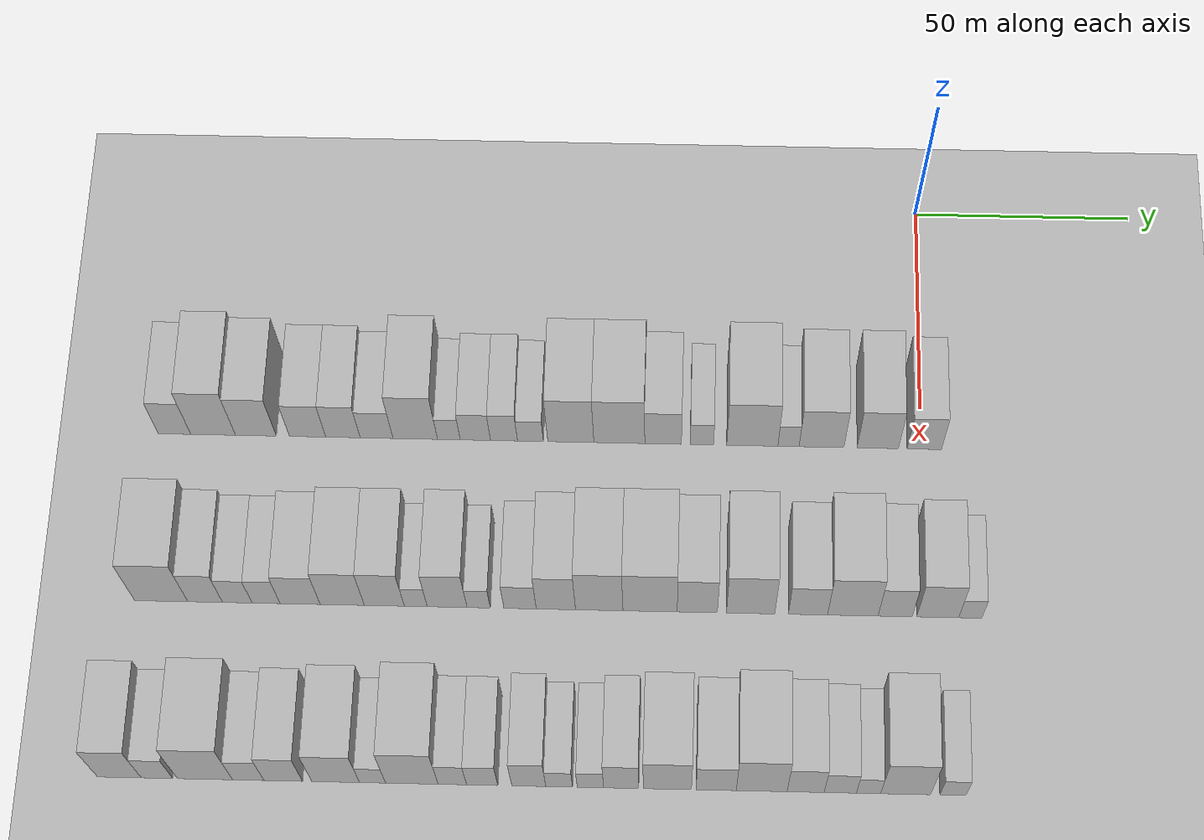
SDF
<sdf version="1.6">
 <world name="default">
  <include><name>ground_plane_1</name><uri>model://HANNAS_ground_plane</uri></include>
  <include>
   <name>ground_plane_2</name>
   <uri>model://HANNAS_ground_plane</uri>
   <pose>100 0 0  0 0 0</pose>
  </include>
  <model name="building_21">
   <static>1</static>
   <pose>50.0000 -169.9237 0 0.000000 0.000000 0.000000</pose>
   <link name="link">
    <pose>0 0 9.00 0 0 0</pose>
    <collision name="collision"><geometry><box><size>20.0000 7.3776 18.0000</size></box></geometry></collision>
    <visual name="visual">
     <cast_shadows>0</cast_shadows>
     <geometry><box><size>20.0000 7.3776 18.0000</size></box></geometry>
     <material>
      <script>
       <uri>model://HANNAS_wall/materials/scripts</uri>
       <uri>model://HANNAS_wall/materials/textures</uri>
       <name>vrc/HANNAS_wall</name>
      </script>
     </material>
    </visual>
   </link>
  </model>
  <model name="building_22">
   <static>1</static>
   <pose>50.0000 -161.1338 0 0.000000 0.000000 0.000000</pose>
   <link name="link">
    <pose>0 0 12.00 0 0 0</pose>
    <collision name="collision"><geometry><box><size>20.0000 10.2021 24.0000</size></box></geometry></collision>
    <visual name="visual">
     <cast_shadows>0</cast_shadows>
     <geometry><box><size>20.0000 10.2021 24.0000</size></box></geometry>
     <material>
      <script>
       <uri>model://HANNAS_wall/materials/scripts</uri>
       <uri>model://HANNAS_wall/materials/textures</uri>
       <name>vrc/HANNAS_wall</name>
      </script>
     </material>
    </visual>
   </link>
  </model>
  <model name="building_23">
   <static>1</static>
   <pose>50.0000 -151.3745 0 0.000000 0.000000 0.000000</pose>
   <link name="link">
    <pose>0 0 10.50 0 0 0</pose>
    <collision name="collision"><geometry><box><size>20.0000 9.3167 21.0000</size></box></geometry></collision>
    <visual name="visual">
     <cast_shadows>0</cast_shadows>
     <geometry><box><size>20.0000 9.3167 21.0000</size></box></geometry>
     <material>
      <script>
       <uri>model://HANNAS_wall/materials/scripts</uri>
       <uri>model://HANNAS_wall/materials/textures</uri>
       <name>vrc/HANNAS_wall</name>
      </script>
     </material>
    </visual>
   </link>
  </model>
  <model name="building_24">
   <static>1</static>
   <pose>50.0000 -139.5765 0 0.000000 0.000000 0.000000</pose>
   <link name="link">
    <pose>0 0 9.00 0 0 0</pose>
    <collision name="collision"><geometry><box><size>20.0000 8.2792 18.0000</size></box></geometry></collision>
    <visual name="visual">
     <cast_shadows>0</cast_shadows>
     <geometry><box><size>20.0000 8.2792 18.0000</size></box></geometry>
     <material>
      <script>
       <uri>model://HANNAS_wall/materials/scripts</uri>
       <uri>model://HANNAS_wall/materials/textures</uri>
       <name>vrc/HANNAS_wall</name>
      </script>
     </material>
    </visual>
   </link>
  </model>
  <model name="building_25">
   <static>1</static>
   <pose>50.0000 -131.5119 0 0.000000 0.000000 0.000000</pose>
   <link name="link">
    <pose>0 0 9.00 0 0 0</pose>
    <collision name="collision"><geometry><box><size>20.0000 7.8499 18.0000</size></box></geometry></collision>
    <visual name="visual">
     <cast_shadows>0</cast_shadows>
     <geometry><box><size>20.0000 7.8499 18.0000</size></box></geometry>
     <material>
      <script>
       <uri>model://HANNAS_wall/materials/scripts</uri>
       <uri>model://HANNAS_wall/materials/textures</uri>
       <name>vrc/HANNAS_wall</name>
      </script>
     </material>
    </visual>
   </link>
  </model>
  <model name="building_26">
   <static>1</static>
   <pose>50.0000 -123.8515 0 0.000000 0.000000 0.000000</pose>
   <link name="link">
    <pose>0 0 7.50 0 0 0</pose>
    <collision name="collision"><geometry><box><size>20.0000 7.4709 15.0000</size></box></geometry></collision>
    <visual name="visual">
     <cast_shadows>0</cast_shadows>
     <geometry><box><size>20.0000 7.4709 15.0000</size></box></geometry>
     <material>
      <script>
       <uri>model://HANNAS_wall/materials/scripts</uri>
       <uri>model://HANNAS_wall/materials/textures</uri>
       <name>vrc/HANNAS_wall</name>
      </script>
     </material>
    </visual>
   </link>
  </model>
  <model name="building_27">
   <static>1</static>
   <pose>50.0000 -115.0399 0 0.000000 0.000000 0.000000</pose>
   <link name="link">
    <pose>0 0 12.00 0 0 0</pose>
    <collision name="collision"><geometry><box><size>20.0000 10.1523 24.0000</size></box></geometry></collision>
    <visual name="visual">
     <cast_shadows>0</cast_shadows>
     <geometry><box><size>20.0000 10.1523 24.0000</size></box></geometry>
     <material>
      <script>
       <uri>model://HANNAS_wall/materials/scripts</uri>
       <uri>model://HANNAS_wall/materials/textures</uri>
       <name>vrc/HANNAS_wall</name>
      </script>
     </material>
    </visual>
   </link>
  </model>
  <model name="building_28">
   <static>1</static>
   <pose>50.0000 -107.3842 0 0.000000 0.000000 0.000000</pose>
   <link name="link">
    <pose>0 0 6.00 0 0 0</pose>
    <collision name="collision"><geometry><box><size>20.0000 5.1590 12.0000</size></box></geometry></collision>
    <visual name="visual">
     <cast_shadows>0</cast_shadows>
     <geometry><box><size>20.0000 5.1590 12.0000</size></box></geometry>
     <material>
      <script>
       <uri>model://HANNAS_wall/materials/scripts</uri>
       <uri>model://HANNAS_wall/materials/textures</uri>
       <name>vrc/HANNAS_wall</name>
      </script>
     </material>
    </visual>
   </link>
  </model>
  <model name="building_29">
   <static>1</static>
   <pose>50.0000 -101.3561 0 0.000000 0.000000 0.000000</pose>
   <link name="link">
    <pose>0 0 7.50 0 0 0</pose>
    <collision name="collision"><geometry><box><size>20.0000 6.8971 15.0000</size></box></geometry></collision>
    <visual name="visual">
     <cast_shadows>0</cast_shadows>
     <geometry><box><size>20.0000 6.8971 15.0000</size></box></geometry>
     <material>
      <script>
       <uri>model://HANNAS_wall/materials/scripts</uri>
       <uri>model://HANNAS_wall/materials/textures</uri>
       <name>vrc/HANNAS_wall</name>
      </script>
     </material>
    </visual>
   </link>
  </model>
  <model name="building_30">
   <static>1</static>
   <pose>50.0000 -94.8345 0 0.000000 0.000000 0.000000</pose>
   <link name="link">
    <pose>0 0 7.50 0 0 0</pose>
    <collision name="collision"><geometry><box><size>20.0000 6.1461 15.0000</size></box></geometry></collision>
    <visual name="visual">
     <cast_shadows>0</cast_shadows>
     <geometry><box><size>20.0000 6.1461 15.0000</size></box></geometry>
     <material>
      <script>
       <uri>model://HANNAS_wall/materials/scripts</uri>
       <uri>model://HANNAS_wall/materials/textures</uri>
       <name>vrc/HANNAS_wall</name>
      </script>
     </material>
    </visual>
   </link>
  </model>
  <model name="building_31">
   <static>1</static>
   <pose>50.0000 -88.8080 0 0.000000 0.000000 0.000000</pose>
   <link name="link">
    <pose>0 0 6.00 0 0 0</pose>
    <collision name="collision"><geometry><box><size>20.0000 5.9069 12.0000</size></box></geometry></collision>
    <visual name="visual">
     <cast_shadows>0</cast_shadows>
     <geometry><box><size>20.0000 5.9069 12.0000</size></box></geometry>
     <material>
      <script>
       <uri>model://HANNAS_wall/materials/scripts</uri>
       <uri>model://HANNAS_wall/materials/textures</uri>
       <name>vrc/HANNAS_wall</name>
      </script>
     </material>
    </visual>
   </link>
  </model>
  <model name="building_32">
   <static>1</static>
   <pose>50.0000 -79.6111 0 0.000000 0.000000 0.000000</pose>
   <link name="link">
    <pose>0 0 12.00 0 0 0</pose>
    <collision name="collision"><geometry><box><size>20.0000 10.4868 24.0000</size></box></geometry></collision>
    <visual name="visual">
     <cast_shadows>0</cast_shadows>
     <geometry><box><size>20.0000 10.4868 24.0000</size></box></geometry>
     <material>
      <script>
       <uri>model://HANNAS_wall/materials/scripts</uri>
       <uri>model://HANNAS_wall/materials/textures</uri>
       <name>vrc/HANNAS_wall</name>
      </script>
     </material>
    </visual>
   </link>
  </model>
  <model name="building_33">
   <static>1</static>
   <pose>50.0000 -68.5768 0 0.000000 0.000000 0.000000</pose>
   <link name="link">
    <pose>0 0 12.00 0 0 0</pose>
    <collision name="collision"><geometry><box><size>20.0000 11.5819 24.0000</size></box></geometry></collision>
    <visual name="visual">
     <cast_shadows>0</cast_shadows>
     <geometry><box><size>20.0000 11.5819 24.0000</size></box></geometry>
     <material>
      <script>
       <uri>model://HANNAS_wall/materials/scripts</uri>
       <uri>model://HANNAS_wall/materials/textures</uri>
       <name>vrc/HANNAS_wall</name>
      </script>
     </material>
    </visual>
   </link>
  </model>
  <model name="building_34">
   <static>1</static>
   <pose>50.0000 -58.6236 0 0.000000 0.000000 0.000000</pose>
   <link name="link">
    <pose>0 0 9.00 0 0 0</pose>
    <collision name="collision"><geometry><box><size>20.0000 8.3245 18.0000</size></box></geometry></collision>
    <visual name="visual">
     <cast_shadows>0</cast_shadows>
     <geometry><box><size>20.0000 8.3245 18.0000</size></box></geometry>
     <material>
      <script>
       <uri>model://HANNAS_wall/materials/scripts</uri>
       <uri>model://HANNAS_wall/materials/textures</uri>
       <name>vrc/HANNAS_wall</name>
      </script>
     </material>
    </visual>
   </link>
  </model>
  <model name="building_35">
   <static>1</static>
   <pose>50.0000 -49.8125 0 0.000000 0.000000 0.000000</pose>
   <link name="link">
    <pose>0 0 6.00 0 0 0</pose>
    <collision name="collision"><geometry><box><size>20.0000 5.2978 12.0000</size></box></geometry></collision>
    <visual name="visual">
     <cast_shadows>0</cast_shadows>
     <geometry><box><size>20.0000 5.2978 12.0000</size></box></geometry>
     <material>
      <script>
       <uri>model://HANNAS_wall/materials/scripts</uri>
       <uri>model://HANNAS_wall/materials/textures</uri>
       <name>vrc/HANNAS_wall</name>
      </script>
     </material>
    </visual>
   </link>
  </model>
  <model name="building_36">
   <static>1</static>
   <pose>50.0000 -38.3444 0 0.000000 0.000000 0.000000</pose>
   <link name="link">
    <pose>0 0 12.00 0 0 0</pose>
    <collision name="collision"><geometry><box><size>20.0000 11.6383 24.0000</size></box></geometry></collision>
    <visual name="visual">
     <cast_shadows>0</cast_shadows>
     <geometry><box><size>20.0000 11.6383 24.0000</size></box></geometry>
     <material>
      <script>
       <uri>model://HANNAS_wall/materials/scripts</uri>
       <uri>model://HANNAS_wall/materials/textures</uri>
       <name>vrc/HANNAS_wall</name>
      </script>
     </material>
    </visual>
   </link>
  </model>
  <model name="building_37">
   <static>1</static>
   <pose>50.0000 -30.1147 0 0.000000 0.000000 0.000000</pose>
   <link name="link">
    <pose>0 0 6.00 0 0 0</pose>
    <collision name="collision"><geometry><box><size>20.0000 4.8212 12.0000</size></box></geometry></collision>
    <visual name="visual">
     <cast_shadows>0</cast_shadows>
     <geometry><box><size>20.0000 4.8212 12.0000</size></box></geometry>
     <material>
      <script>
       <uri>model://HANNAS_wall/materials/scripts</uri>
       <uri>model://HANNAS_wall/materials/textures</uri>
       <name>vrc/HANNAS_wall</name>
      </script>
     </material>
    </visual>
   </link>
  </model>
  <model name="building_38">
   <static>1</static>
   <pose>50.0000 -22.6148 0 0.000000 0.000000 0.000000</pose>
   <link name="link">
    <pose>0 0 10.50 0 0 0</pose>
    <collision name="collision"><geometry><box><size>20.0000 10.1786 21.0000</size></box></geometry></collision>
    <visual name="visual">
     <cast_shadows>0</cast_shadows>
     <geometry><box><size>20.0000 10.1786 21.0000</size></box></geometry>
     <material>
      <script>
       <uri>model://HANNAS_wall/materials/scripts</uri>
       <uri>model://HANNAS_wall/materials/textures</uri>
       <name>vrc/HANNAS_wall</name>
      </script>
     </material>
    </visual>
   </link>
  </model>
  <model name="building_39">
   <static>1</static>
   <pose>50.0000 -9.8363 0 0.000000 0.000000 0.000000</pose>
   <link name="link">
    <pose>0 0 10.50 0 0 0</pose>
    <collision name="collision"><geometry><box><size>20.0000 9.3783 21.0000</size></box></geometry></collision>
    <visual name="visual">
     <cast_shadows>0</cast_shadows>
     <geometry><box><size>20.0000 9.3783 21.0000</size></box></geometry>
     <material>
      <script>
       <uri>model://HANNAS_wall/materials/scripts</uri>
       <uri>model://HANNAS_wall/materials/textures</uri>
       <name>vrc/HANNAS_wall</name>
      </script>
     </material>
    </visual>
   </link>
  </model>
  <model name="building_40">
   <static>1</static>
   <pose>50.0000 0.7481 0 0.000000 0.000000 0.000000</pose>
   <link name="link">
    <pose>0 0 9.00 0 0 0</pose>
    <collision name="collision"><geometry><box><size>20.0000 7.7905 18.0000</size></box></geometry></collision>
    <visual name="visual">
     <cast_shadows>0</cast_shadows>
     <geometry><box><size>20.0000 7.7905 18.0000</size></box></geometry>
     <material>
      <script>
       <uri>model://HANNAS_wall/materials/scripts</uri>
       <uri>model://HANNAS_wall/materials/textures</uri>
       <name>vrc/HANNAS_wall</name>
      </script>
     </material>
    </visual>
   </link>
  </model>
  <model name="building_111">
   <static>1</static>
   <pose>90.0000 -168.9649 0 0.000000 0.000000 0.000000</pose>
   <link name="link">
    <pose>0 0 12.00 0 0 0</pose>
    <collision name="collision"><geometry><box><size>20.0000 11.7870 24.0000</size></box></geometry></collision>
    <visual name="visual">
     <cast_shadows>0</cast_shadows>
     <geometry><box><size>20.0000 11.7870 24.0000</size></box></geometry>
     <material>
      <script>
       <uri>model://HANNAS_wall/materials/scripts</uri>
       <uri>model://HANNAS_wall/materials/textures</uri>
       <name>vrc/HANNAS_wall</name>
      </script>
     </material>
    </visual>
   </link>
  </model>
  <model name="building_112">
   <static>1</static>
   <pose>90.0000 -159.2327 0 0.000000 0.000000 0.000000</pose>
   <link name="link">
    <pose>0 0 9.00 0 0 0</pose>
    <collision name="collision"><geometry><box><size>20.0000 7.6773 18.0000</size></box></geometry></collision>
    <visual name="visual">
     <cast_shadows>0</cast_shadows>
     <geometry><box><size>20.0000 7.6773 18.0000</size></box></geometry>
     <material>
      <script>
       <uri>model://HANNAS_wall/materials/scripts</uri>
       <uri>model://HANNAS_wall/materials/textures</uri>
       <name>vrc/HANNAS_wall</name>
      </script>
     </material>
    </visual>
   </link>
  </model>
  <model name="building_113">
   <static>1</static>
   <pose>90.0000 -152.1199 0 0.000000 0.000000 0.000000</pose>
   <link name="link">
    <pose>0 0 7.50 0 0 0</pose>
    <collision name="collision"><geometry><box><size>20.0000 6.5484 15.0000</size></box></geometry></collision>
    <visual name="visual">
     <cast_shadows>0</cast_shadows>
     <geometry><box><size>20.0000 6.5484 15.0000</size></box></geometry>
     <material>
      <script>
       <uri>model://HANNAS_wall/materials/scripts</uri>
       <uri>model://HANNAS_wall/materials/textures</uri>
       <name>vrc/HANNAS_wall</name>
      </script>
     </material>
    </visual>
   </link>
  </model>
  <model name="building_114">
   <static>1</static>
   <pose>90.0000 -145.7320 0 0.000000 0.000000 0.000000</pose>
   <link name="link">
    <pose>0 0 7.50 0 0 0</pose>
    <collision name="collision"><geometry><box><size>20.0000 6.2275 15.0000</size></box></geometry></collision>
    <visual name="visual">
     <cast_shadows>0</cast_shadows>
     <geometry><box><size>20.0000 6.2275 15.0000</size></box></geometry>
     <material>
      <script>
       <uri>model://HANNAS_wall/materials/scripts</uri>
       <uri>model://HANNAS_wall/materials/textures</uri>
       <name>vrc/HANNAS_wall</name>
      </script>
     </material>
    </visual>
   </link>
  </model>
  <model name="building_115">
   <static>1</static>
   <pose>90.0000 -138.1670 0 0.000000 0.000000 0.000000</pose>
   <link name="link">
    <pose>0 0 9.00 0 0 0</pose>
    <collision name="collision"><geometry><box><size>20.0000 8.9025 18.0000</size></box></geometry></collision>
    <visual name="visual">
     <cast_shadows>0</cast_shadows>
     <geometry><box><size>20.0000 8.9025 18.0000</size></box></geometry>
     <material>
      <script>
       <uri>model://HANNAS_wall/materials/scripts</uri>
       <uri>model://HANNAS_wall/materials/textures</uri>
       <name>vrc/HANNAS_wall</name>
      </script>
     </material>
    </visual>
   </link>
  </model>
  <model name="building_116">
   <static>1</static>
   <pose>90.0000 -128.8193 0 0.000000 0.000000 0.000000</pose>
   <link name="link">
    <pose>0 0 10.50 0 0 0</pose>
    <collision name="collision"><geometry><box><size>20.0000 9.7930 21.0000</size></box></geometry></collision>
    <visual name="visual">
     <cast_shadows>0</cast_shadows>
     <geometry><box><size>20.0000 9.7930 21.0000</size></box></geometry>
     <material>
      <script>
       <uri>model://HANNAS_wall/materials/scripts</uri>
       <uri>model://HANNAS_wall/materials/textures</uri>
       <name>vrc/HANNAS_wall</name>
      </script>
     </material>
    </visual>
   </link>
  </model>
  <model name="building_117">
   <static>1</static>
   <pose>90.0000 -119.4898 0 0.000000 0.000000 0.000000</pose>
   <link name="link">
    <pose>0 0 10.50 0 0 0</pose>
    <collision name="collision"><geometry><box><size>20.0000 8.8660 21.0000</size></box></geometry></collision>
    <visual name="visual">
     <cast_shadows>0</cast_shadows>
     <geometry><box><size>20.0000 8.8660 21.0000</size></box></geometry>
     <material>
      <script>
       <uri>model://HANNAS_wall/materials/scripts</uri>
       <uri>model://HANNAS_wall/materials/textures</uri>
       <name>vrc/HANNAS_wall</name>
      </script>
     </material>
    </visual>
   </link>
  </model>
  <model name="building_118">
   <static>1</static>
   <pose>90.0000 -112.5178 0 0.000000 0.000000 0.000000</pose>
   <link name="link">
    <pose>0 0 6.00 0 0 0</pose>
    <collision name="collision"><geometry><box><size>20.0000 5.0781 12.0000</size></box></geometry></collision>
    <visual name="visual">
     <cast_shadows>0</cast_shadows>
     <geometry><box><size>20.0000 5.0781 12.0000</size></box></geometry>
     <material>
      <script>
       <uri>model://HANNAS_wall/materials/scripts</uri>
       <uri>model://HANNAS_wall/materials/textures</uri>
       <name>vrc/HANNAS_wall</name>
      </script>
     </material>
    </visual>
   </link>
  </model>
  <model name="building_119">
   <static>1</static>
   <pose>90.0000 -105.5789 0 0.000000 0.000000 0.000000</pose>
   <link name="link">
    <pose>0 0 10.50 0 0 0</pose>
    <collision name="collision"><geometry><box><size>20.0000 8.7997 21.0000</size></box></geometry></collision>
    <visual name="visual">
     <cast_shadows>0</cast_shadows>
     <geometry><box><size>20.0000 8.7997 21.0000</size></box></geometry>
     <material>
      <script>
       <uri>model://HANNAS_wall/materials/scripts</uri>
       <uri>model://HANNAS_wall/materials/textures</uri>
       <name>vrc/HANNAS_wall</name>
      </script>
     </material>
    </visual>
   </link>
  </model>
  <model name="building_120">
   <static>1</static>
   <pose>90.0000 -98.5974 0 0.000000 0.000000 0.000000</pose>
   <link name="link">
    <pose>0 0 6.00 0 0 0</pose>
    <collision name="collision"><geometry><box><size>20.0000 5.1633 12.0000</size></box></geometry></collision>
    <visual name="visual">
     <cast_shadows>0</cast_shadows>
     <geometry><box><size>20.0000 5.1633 12.0000</size></box></geometry>
     <material>
      <script>
       <uri>model://HANNAS_wall/materials/scripts</uri>
       <uri>model://HANNAS_wall/materials/textures</uri>
       <name>vrc/HANNAS_wall</name>
      </script>
     </material>
    </visual>
   </link>
  </model>
  <model name="building_121">
   <static>1</static>
   <pose>90.0000 -89.4304 0 0.000000 0.000000 0.000000</pose>
   <link name="link">
    <pose>0 0 7.50 0 0 0</pose>
    <collision name="collision"><geometry><box><size>20.0000 7.1706 15.0000</size></box></geometry></collision>
    <visual name="visual">
     <cast_shadows>0</cast_shadows>
     <geometry><box><size>20.0000 7.1706 15.0000</size></box></geometry>
     <material>
      <script>
       <uri>model://HANNAS_wall/materials/scripts</uri>
       <uri>model://HANNAS_wall/materials/textures</uri>
       <name>vrc/HANNAS_wall</name>
      </script>
     </material>
    </visual>
   </link>
  </model>
  <model name="building_122">
   <static>1</static>
   <pose>90.0000 -81.5016 0 0.000000 0.000000 0.000000</pose>
   <link name="link">
    <pose>0 0 10.50 0 0 0</pose>
    <collision name="collision"><geometry><box><size>20.0000 8.6869 21.0000</size></box></geometry></collision>
    <visual name="visual">
     <cast_shadows>0</cast_shadows>
     <geometry><box><size>20.0000 8.6869 21.0000</size></box></geometry>
     <material>
      <script>
       <uri>model://HANNAS_wall/materials/scripts</uri>
       <uri>model://HANNAS_wall/materials/textures</uri>
       <name>vrc/HANNAS_wall</name>
      </script>
     </material>
    </visual>
   </link>
  </model>
  <model name="building_123">
   <static>1</static>
   <pose>90.0000 -71.9076 0 0.000000 0.000000 0.000000</pose>
   <link name="link">
    <pose>0 0 12.00 0 0 0</pose>
    <collision name="collision"><geometry><box><size>20.0000 10.5010 24.0000</size></box></geometry></collision>
    <visual name="visual">
     <cast_shadows>0</cast_shadows>
     <geometry><box><size>20.0000 10.5010 24.0000</size></box></geometry>
     <material>
      <script>
       <uri>model://HANNAS_wall/materials/scripts</uri>
       <uri>model://HANNAS_wall/materials/textures</uri>
       <name>vrc/HANNAS_wall</name>
      </script>
     </material>
    </visual>
   </link>
  </model>
  <model name="building_124">
   <static>1</static>
   <pose>90.0000 -60.6600 0 0.000000 0.000000 0.000000</pose>
   <link name="link">
    <pose>0 0 12.00 0 0 0</pose>
    <collision name="collision"><geometry><box><size>20.0000 11.9942 24.0000</size></box></geometry></collision>
    <visual name="visual">
     <cast_shadows>0</cast_shadows>
     <geometry><box><size>20.0000 11.9942 24.0000</size></box></geometry>
     <material>
      <script>
       <uri>model://HANNAS_wall/materials/scripts</uri>
       <uri>model://HANNAS_wall/materials/textures</uri>
       <name>vrc/HANNAS_wall</name>
      </script>
     </material>
    </visual>
   </link>
  </model>
  <model name="building_125">
   <static>1</static>
   <pose>90.0000 -50.2229 0 0.000000 0.000000 0.000000</pose>
   <link name="link">
    <pose>0 0 10.50 0 0 0</pose>
    <collision name="collision"><geometry><box><size>20.0000 8.8800 21.0000</size></box></geometry></collision>
    <visual name="visual">
     <cast_shadows>0</cast_shadows>
     <geometry><box><size>20.0000 8.8800 21.0000</size></box></geometry>
     <material>
      <script>
       <uri>model://HANNAS_wall/materials/scripts</uri>
       <uri>model://HANNAS_wall/materials/textures</uri>
       <name>vrc/HANNAS_wall</name>
      </script>
     </material>
    </visual>
   </link>
  </model>
  <model name="building_126">
   <static>1</static>
   <pose>90.0000 -38.4330 0 0.000000 0.000000 0.000000</pose>
   <link name="link">
    <pose>0 0 12.00 0 0 0</pose>
    <collision name="collision"><geometry><box><size>20.0000 10.6999 24.0000</size></box></geometry></collision>
    <visual name="visual">
     <cast_shadows>0</cast_shadows>
     <geometry><box><size>20.0000 10.6999 24.0000</size></box></geometry>
     <material>
      <script>
       <uri>model://HANNAS_wall/materials/scripts</uri>
       <uri>model://HANNAS_wall/materials/textures</uri>
       <name>vrc/HANNAS_wall</name>
      </script>
     </material>
    </visual>
   </link>
  </model>
  <model name="building_127">
   <static>1</static>
   <pose>90.0000 -25.7578 0 0.000000 0.000000 0.000000</pose>
   <link name="link">
    <pose>0 0 9.00 0 0 0</pose>
    <collision name="collision"><geometry><box><size>20.0000 8.6504 18.0000</size></box></geometry></collision>
    <visual name="visual">
     <cast_shadows>0</cast_shadows>
     <geometry><box><size>20.0000 8.6504 18.0000</size></box></geometry>
     <material>
      <script>
       <uri>model://HANNAS_wall/materials/scripts</uri>
       <uri>model://HANNAS_wall/materials/textures</uri>
       <name>vrc/HANNAS_wall</name>
      </script>
     </material>
    </visual>
   </link>
  </model>
  <model name="building_128">
   <static>1</static>
   <pose>90.0000 -15.8540 0 0.000000 0.000000 0.000000</pose>
   <link name="link">
    <pose>0 0 12.00 0 0 0</pose>
    <collision name="collision"><geometry><box><size>20.0000 11.1573 24.0000</size></box></geometry></collision>
    <visual name="visual">
     <cast_shadows>0</cast_shadows>
     <geometry><box><size>20.0000 11.1573 24.0000</size></box></geometry>
     <material>
      <script>
       <uri>model://HANNAS_wall/materials/scripts</uri>
       <uri>model://HANNAS_wall/materials/textures</uri>
       <name>vrc/HANNAS_wall</name>
      </script>
     </material>
    </visual>
   </link>
  </model>
  <model name="building_129">
   <static>1</static>
   <pose>90.0000 -6.5107 0 0.000000 0.000000 0.000000</pose>
   <link name="link">
    <pose>0 0 9.00 0 0 0</pose>
    <collision name="collision"><geometry><box><size>20.0000 7.5293 18.0000</size></box></geometry></collision>
    <visual name="visual">
     <cast_shadows>0</cast_shadows>
     <geometry><box><size>20.0000 7.5293 18.0000</size></box></geometry>
     <material>
      <script>
       <uri>model://HANNAS_wall/materials/scripts</uri>
       <uri>model://HANNAS_wall/materials/textures</uri>
       <name>vrc/HANNAS_wall</name>
      </script>
     </material>
    </visual>
   </link>
  </model>
  <model name="building_130">
   <static>1</static>
   <pose>90.0000 2.9005 0 0.000000 0.000000 0.000000</pose>
   <link name="link">
    <pose>0 0 10.50 0 0 0</pose>
    <collision name="collision"><geometry><box><size>20.0000 9.2931 21.0000</size></box></geometry></collision>
    <visual name="visual">
     <cast_shadows>0</cast_shadows>
     <geometry><box><size>20.0000 9.2931 21.0000</size></box></geometry>
     <material>
      <script>
       <uri>model://HANNAS_wall/materials/scripts</uri>
       <uri>model://HANNAS_wall/materials/textures</uri>
       <name>vrc/HANNAS_wall</name>
      </script>
     </material>
    </visual>
   </link>
  </model>
  <model name="building_131">
   <static>1</static>
   <pose>90.0000 10.1076 0 0.000000 0.000000 0.000000</pose>
   <link name="link">
    <pose>0 0 6.00 0 0 0</pose>
    <collision name="collision"><geometry><box><size>20.0000 5.1210 12.0000</size></box></geometry></collision>
    <visual name="visual">
     <cast_shadows>0</cast_shadows>
     <geometry><box><size>20.0000 5.1210 12.0000</size></box></geometry>
     <material>
      <script>
       <uri>model://HANNAS_wall/materials/scripts</uri>
       <uri>model://HANNAS_wall/materials/textures</uri>
       <name>vrc/HANNAS_wall</name>
      </script>
     </material>
    </visual>
   </link>
  </model>
  <model name="building_188">
   <static>1</static>
   <pose>130.0000 -174.0091 0 0.000000 0.000000 0.000000</pose>
   <link name="link">
    <pose>0 0 10.50 0 0 0</pose>
    <collision name="collision"><geometry><box><size>20.0000 9.4610 21.0000</size></box></geometry></collision>
    <visual name="visual">
     <cast_shadows>0</cast_shadows>
     <geometry><box><size>20.0000 9.4610 21.0000</size></box></geometry>
     <material>
      <script>
       <uri>model://HANNAS_wall/materials/scripts</uri>
       <uri>model://HANNAS_wall/materials/textures</uri>
       <name>vrc/HANNAS_wall</name>
      </script>
     </material>
    </visual>
   </link>
  </model>
  <model name="building_189">
   <static>1</static>
   <pose>130.0000 -165.8909 0 0.000000 0.000000 0.000000</pose>
   <link name="link">
    <pose>0 0 7.50 0 0 0</pose>
    <collision name="collision"><geometry><box><size>20.0000 6.7754 15.0000</size></box></geometry></collision>
    <visual name="visual">
     <cast_shadows>0</cast_shadows>
     <geometry><box><size>20.0000 6.7754 15.0000</size></box></geometry>
     <material>
      <script>
       <uri>model://HANNAS_wall/materials/scripts</uri>
       <uri>model://HANNAS_wall/materials/textures</uri>
       <name>vrc/HANNAS_wall</name>
      </script>
     </material>
    </visual>
   </link>
  </model>
  <model name="building_190">
   <static>1</static>
   <pose>130.0000 -155.5298 0 0.000000 0.000000 0.000000</pose>
   <link name="link">
    <pose>0 0 12.00 0 0 0</pose>
    <collision name="collision"><geometry><box><size>20.0000 11.9469 24.0000</size></box></geometry></collision>
    <visual name="visual">
     <cast_shadows>0</cast_shadows>
     <geometry><box><size>20.0000 11.9469 24.0000</size></box></geometry>
     <material>
      <script>
       <uri>model://HANNAS_wall/materials/scripts</uri>
       <uri>model://HANNAS_wall/materials/textures</uri>
       <name>vrc/HANNAS_wall</name>
      </script>
     </material>
    </visual>
   </link>
  </model>
  <model name="building_191">
   <static>1</static>
   <pose>130.0000 -146.1882 0 0.000000 0.000000 0.000000</pose>
   <link name="link">
    <pose>0 0 7.50 0 0 0</pose>
    <collision name="collision"><geometry><box><size>20.0000 6.7363 15.0000</size></box></geometry></collision>
    <visual name="visual">
     <cast_shadows>0</cast_shadows>
     <geometry><box><size>20.0000 6.7363 15.0000</size></box></geometry>
     <material>
      <script>
       <uri>model://HANNAS_wall/materials/scripts</uri>
       <uri>model://HANNAS_wall/materials/textures</uri>
       <name>vrc/HANNAS_wall</name>
      </script>
     </material>
    </visual>
   </link>
  </model>
  <model name="building_192">
   <static>1</static>
   <pose>130.0000 -138.6651 0 0.000000 0.000000 0.000000</pose>
   <link name="link">
    <pose>0 0 9.00 0 0 0</pose>
    <collision name="collision"><geometry><box><size>20.0000 8.3097 18.0000</size></box></geometry></collision>
    <visual name="visual">
     <cast_shadows>0</cast_shadows>
     <geometry><box><size>20.0000 8.3097 18.0000</size></box></geometry>
     <material>
      <script>
       <uri>model://HANNAS_wall/materials/scripts</uri>
       <uri>model://HANNAS_wall/materials/textures</uri>
       <name>vrc/HANNAS_wall</name>
      </script>
     </material>
    </visual>
   </link>
  </model>
  <model name="building_193">
   <static>1</static>
   <pose>130.0000 -127.3720 0 0.000000 0.000000 0.000000</pose>
   <link name="link">
    <pose>0 0 10.50 0 0 0</pose>
    <collision name="collision"><geometry><box><size>20.0000 10.2764 21.0000</size></box></geometry></collision>
    <visual name="visual">
     <cast_shadows>0</cast_shadows>
     <geometry><box><size>20.0000 10.2764 21.0000</size></box></geometry>
     <material>
      <script>
       <uri>model://HANNAS_wall/materials/scripts</uri>
       <uri>model://HANNAS_wall/materials/textures</uri>
       <name>vrc/HANNAS_wall</name>
      </script>
     </material>
    </visual>
   </link>
  </model>
  <model name="building_194">
   <static>1</static>
   <pose>130.0000 -119.4280 0 0.000000 0.000000 0.000000</pose>
   <link name="link">
    <pose>0 0 6.00 0 0 0</pose>
    <collision name="collision"><geometry><box><size>20.0000 5.6116 12.0000</size></box></geometry></collision>
    <visual name="visual">
     <cast_shadows>0</cast_shadows>
     <geometry><box><size>20.0000 5.6116 12.0000</size></box></geometry>
     <material>
      <script>
       <uri>model://HANNAS_wall/materials/scripts</uri>
       <uri>model://HANNAS_wall/materials/textures</uri>
       <name>vrc/HANNAS_wall</name>
      </script>
     </material>
    </visual>
   </link>
  </model>
  <model name="building_195">
   <static>1</static>
   <pose>130.0000 -110.9545 0 0.000000 0.000000 0.000000</pose>
   <link name="link">
    <pose>0 0 12.00 0 0 0</pose>
    <collision name="collision"><geometry><box><size>20.0000 11.3355 24.0000</size></box></geometry></collision>
    <visual name="visual">
     <cast_shadows>0</cast_shadows>
     <geometry><box><size>20.0000 11.3355 24.0000</size></box></geometry>
     <material>
      <script>
       <uri>model://HANNAS_wall/materials/scripts</uri>
       <uri>model://HANNAS_wall/materials/textures</uri>
       <name>vrc/HANNAS_wall</name>
      </script>
     </material>
    </visual>
   </link>
  </model>
  <model name="building_196">
   <static>1</static>
   <pose>130.0000 -102.2326 0 0.000000 0.000000 0.000000</pose>
   <link name="link">
    <pose>0 0 7.50 0 0 0</pose>
    <collision name="collision"><geometry><box><size>20.0000 6.1082 15.0000</size></box></geometry></collision>
    <visual name="visual">
     <cast_shadows>0</cast_shadows>
     <geometry><box><size>20.0000 6.1082 15.0000</size></box></geometry>
     <material>
      <script>
       <uri>model://HANNAS_wall/materials/scripts</uri>
       <uri>model://HANNAS_wall/materials/textures</uri>
       <name>vrc/HANNAS_wall</name>
      </script>
     </material>
    </visual>
   </link>
  </model>
  <model name="building_197">
   <static>1</static>
   <pose>130.0000 -95.8167 0 0.000000 0.000000 0.000000</pose>
   <link name="link">
    <pose>0 0 7.50 0 0 0</pose>
    <collision name="collision"><geometry><box><size>20.0000 6.7236 15.0000</size></box></geometry></collision>
    <visual name="visual">
     <cast_shadows>0</cast_shadows>
     <geometry><box><size>20.0000 6.7236 15.0000</size></box></geometry>
     <material>
      <script>
       <uri>model://HANNAS_wall/materials/scripts</uri>
       <uri>model://HANNAS_wall/materials/textures</uri>
       <name>vrc/HANNAS_wall</name>
      </script>
     </material>
    </visual>
   </link>
  </model>
  <model name="building_198">
   <static>1</static>
   <pose>130.0000 -85.8041 0 0.000000 0.000000 0.000000</pose>
   <link name="link">
    <pose>0 0 9.00 0 0 0</pose>
    <collision name="collision"><geometry><box><size>20.0000 7.3015 18.0000</size></box></geometry></collision>
    <visual name="visual">
     <cast_shadows>0</cast_shadows>
     <geometry><box><size>20.0000 7.3015 18.0000</size></box></geometry>
     <material>
      <script>
       <uri>model://HANNAS_wall/materials/scripts</uri>
       <uri>model://HANNAS_wall/materials/textures</uri>
       <name>vrc/HANNAS_wall</name>
      </script>
     </material>
    </visual>
   </link>
  </model>
  <model name="building_199">
   <static>1</static>
   <pose>130.0000 -79.2727 0 0.000000 0.000000 0.000000</pose>
   <link name="link">
    <pose>0 0 6.00 0 0 0</pose>
    <collision name="collision"><geometry><box><size>20.0000 5.7613 12.0000</size></box></geometry></collision>
    <visual name="visual">
     <cast_shadows>0</cast_shadows>
     <geometry><box><size>20.0000 5.7613 12.0000</size></box></geometry>
     <material>
      <script>
       <uri>model://HANNAS_wall/materials/scripts</uri>
       <uri>model://HANNAS_wall/materials/textures</uri>
       <name>vrc/HANNAS_wall</name>
      </script>
     </material>
    </visual>
   </link>
  </model>
  <model name="building_200">
   <static>1</static>
   <pose>130.0000 -72.5590 0 0.000000 0.000000 0.000000</pose>
   <link name="link">
    <pose>0 0 6.00 0 0 0</pose>
    <collision name="collision"><geometry><box><size>20.0000 5.6661 12.0000</size></box></geometry></collision>
    <visual name="visual">
     <cast_shadows>0</cast_shadows>
     <geometry><box><size>20.0000 5.6661 12.0000</size></box></geometry>
     <material>
      <script>
       <uri>model://HANNAS_wall/materials/scripts</uri>
       <uri>model://HANNAS_wall/materials/textures</uri>
       <name>vrc/HANNAS_wall</name>
      </script>
     </material>
    </visual>
   </link>
  </model>
  <model name="building_201">
   <static>1</static>
   <pose>130.0000 -65.9502 0 0.000000 0.000000 0.000000</pose>
   <link name="link">
    <pose>0 0 9.00 0 0 0</pose>
    <collision name="collision"><geometry><box><size>20.0000 7.5515 18.0000</size></box></geometry></collision>
    <visual name="visual">
     <cast_shadows>0</cast_shadows>
     <geometry><box><size>20.0000 7.5515 18.0000</size></box></geometry>
     <material>
      <script>
       <uri>model://HANNAS_wall/materials/scripts</uri>
       <uri>model://HANNAS_wall/materials/textures</uri>
       <name>vrc/HANNAS_wall</name>
      </script>
     </material>
    </visual>
   </link>
  </model>
  <model name="building_202">
   <static>1</static>
   <pose>130.0000 -56.0041 0 0.000000 0.000000 0.000000</pose>
   <link name="link">
    <pose>0 0 10.50 0 0 0</pose>
    <collision name="collision"><geometry><box><size>20.0000 10.3408 21.0000</size></box></geometry></collision>
    <visual name="visual">
     <cast_shadows>0</cast_shadows>
     <geometry><box><size>20.0000 10.3408 21.0000</size></box></geometry>
     <material>
      <script>
       <uri>model://HANNAS_wall/materials/scripts</uri>
       <uri>model://HANNAS_wall/materials/textures</uri>
       <name>vrc/HANNAS_wall</name>
      </script>
     </material>
    </visual>
   </link>
  </model>
  <model name="building_203">
   <static>1</static>
   <pose>130.0000 -45.5263 0 0.000000 0.000000 0.000000</pose>
   <link name="link">
    <pose>0 0 9.00 0 0 0</pose>
    <collision name="collision"><geometry><box><size>20.0000 8.6147 18.0000</size></box></geometry></collision>
    <visual name="visual">
     <cast_shadows>0</cast_shadows>
     <geometry><box><size>20.0000 8.6147 18.0000</size></box></geometry>
     <material>
      <script>
       <uri>model://HANNAS_wall/materials/scripts</uri>
       <uri>model://HANNAS_wall/materials/textures</uri>
       <name>vrc/HANNAS_wall</name>
      </script>
     </material>
    </visual>
   </link>
  </model>
  <model name="building_204">
   <static>1</static>
   <pose>130.0000 -35.7545 0 0.000000 0.000000 0.000000</pose>
   <link name="link">
    <pose>0 0 12.00 0 0 0</pose>
    <collision name="collision"><geometry><box><size>20.0000 10.9288 24.0000</size></box></geometry></collision>
    <visual name="visual">
     <cast_shadows>0</cast_shadows>
     <geometry><box><size>20.0000 10.9288 24.0000</size></box></geometry>
     <material>
      <script>
       <uri>model://HANNAS_wall/materials/scripts</uri>
       <uri>model://HANNAS_wall/materials/textures</uri>
       <name>vrc/HANNAS_wall</name>
      </script>
     </material>
    </visual>
   </link>
  </model>
  <model name="building_205">
   <static>1</static>
   <pose>130.0000 -26.3173 0 0.000000 0.000000 0.000000</pose>
   <link name="link">
    <pose>0 0 9.00 0 0 0</pose>
    <collision name="collision"><geometry><box><size>20.0000 7.9457 18.0000</size></box></geometry></collision>
    <visual name="visual">
     <cast_shadows>0</cast_shadows>
     <geometry><box><size>20.0000 7.9457 18.0000</size></box></geometry>
     <material>
      <script>
       <uri>model://HANNAS_wall/materials/scripts</uri>
       <uri>model://HANNAS_wall/materials/textures</uri>
       <name>vrc/HANNAS_wall</name>
      </script>
     </material>
    </visual>
   </link>
  </model>
  <model name="building_206">
   <static>1</static>
   <pose>130.0000 -18.8847 0 0.000000 0.000000 0.000000</pose>
   <link name="link">
    <pose>0 0 7.50 0 0 0</pose>
    <collision name="collision"><geometry><box><size>20.0000 6.9196 15.0000</size></box></geometry></collision>
    <visual name="visual">
     <cast_shadows>0</cast_shadows>
     <geometry><box><size>20.0000 6.9196 15.0000</size></box></geometry>
     <material>
      <script>
       <uri>model://HANNAS_wall/materials/scripts</uri>
       <uri>model://HANNAS_wall/materials/textures</uri>
       <name>vrc/HANNAS_wall</name>
      </script>
     </material>
    </visual>
   </link>
  </model>
  <model name="building_207">
   <static>1</static>
   <pose>130.0000 -12.8170 0 0.000000 0.000000 0.000000</pose>
   <link name="link">
    <pose>0 0 6.00 0 0 0</pose>
    <collision name="collision"><geometry><box><size>20.0000 5.2156 12.0000</size></box></geometry></collision>
    <visual name="visual">
     <cast_shadows>0</cast_shadows>
     <geometry><box><size>20.0000 5.2156 12.0000</size></box></geometry>
     <material>
      <script>
       <uri>model://HANNAS_wall/materials/scripts</uri>
       <uri>model://HANNAS_wall/materials/textures</uri>
       <name>vrc/HANNAS_wall</name>
      </script>
     </material>
    </visual>
   </link>
  </model>
  <model name="building_208">
   <static>1</static>
   <pose>130.0000 -4.8489 0 0.000000 0.000000 0.000000</pose>
   <link name="link">
    <pose>0 0 12.00 0 0 0</pose>
    <collision name="collision"><geometry><box><size>20.0000 10.7206 24.0000</size></box></geometry></collision>
    <visual name="visual">
     <cast_shadows>0</cast_shadows>
     <geometry><box><size>20.0000 10.7206 24.0000</size></box></geometry>
     <material>
      <script>
       <uri>model://HANNAS_wall/materials/scripts</uri>
       <uri>model://HANNAS_wall/materials/textures</uri>
       <name>vrc/HANNAS_wall</name>
      </script>
     </material>
    </visual>
   </link>
  </model>
  <model name="building_209">
   <static>1</static>
   <pose>130.0000 5.3164 0 0.000000 0.000000 0.000000</pose>
   <link name="link">
    <pose>0 0 6.00 0 0 0</pose>
    <collision name="collision"><geometry><box><size>20.0000 5.6100 12.0000</size></box></geometry></collision>
    <visual name="visual">
     <cast_shadows>0</cast_shadows>
     <geometry><box><size>20.0000 5.6100 12.0000</size></box></geometry>
     <material>
      <script>
       <uri>model://HANNAS_wall/materials/scripts</uri>
       <uri>model://HANNAS_wall/materials/textures</uri>
       <name>vrc/HANNAS_wall</name>
      </script>
     </material>
    </visual>
   </link>
  </model>
 </world>
</sdf>
